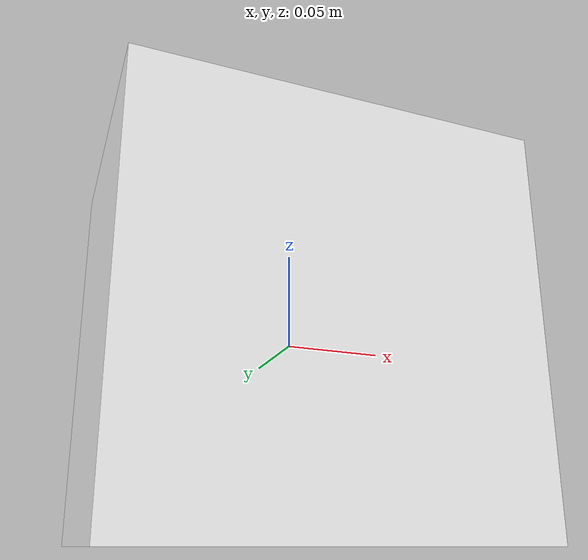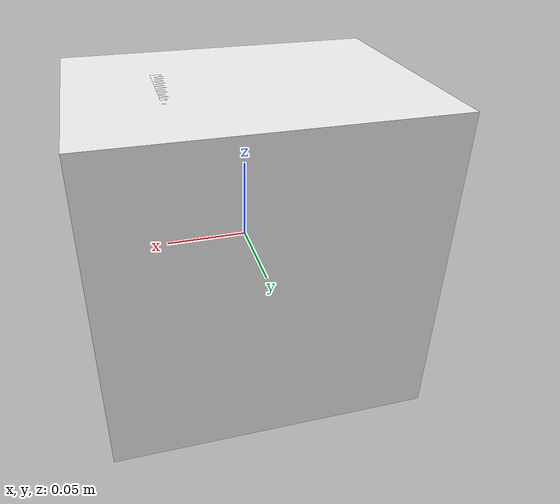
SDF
<?xml version="1.0"?>
<sdf version="1.5">
  <model name="corner_box">
    <static>true</static>
    <link name="link">
      <collision name="collision">
        <pose>0 0 0 0 0 0</pose>
        <geometry><box><size>0.25 0.2 0.2</size></box></geometry>
      </collision>
      <visual name="visual">
        <pose>0 0 0 0 0 0</pose>
        <geometry><box><size>0.2 0.15 0.2</size></box></geometry>
        <material><script><name>Gazebo/White</name></script></material>
      </visual>
      <collision name="collision_in">
        <pose>0 0 0 0 0 0</pose>
        <geometry><box><size>0.1 0.05 0.2</size></box></geometry>
      </collision>
      <visual name="visual_in">
        <pose>0 0 0 0 0 0</pose>
        <geometry><box><size>0.1 0.05 0.2</size></box></geometry>
        <material><script><name>Gazebo/White</name></script></material>
      </visual>
    </link>
  </model>
</sdf>
